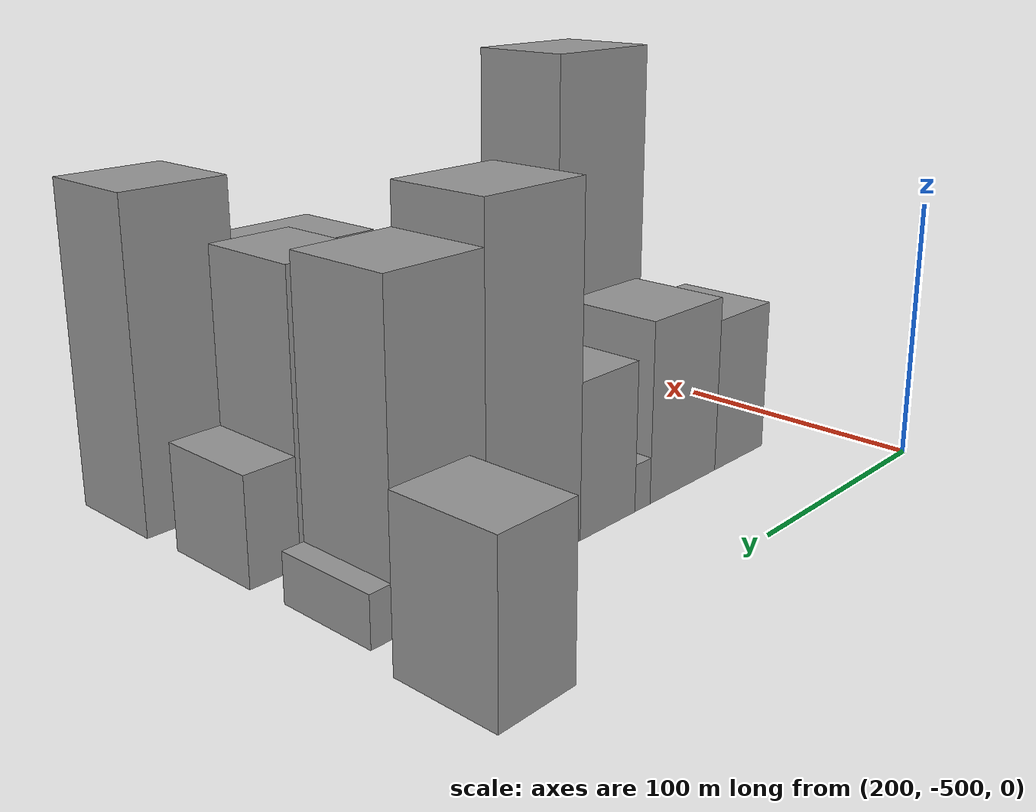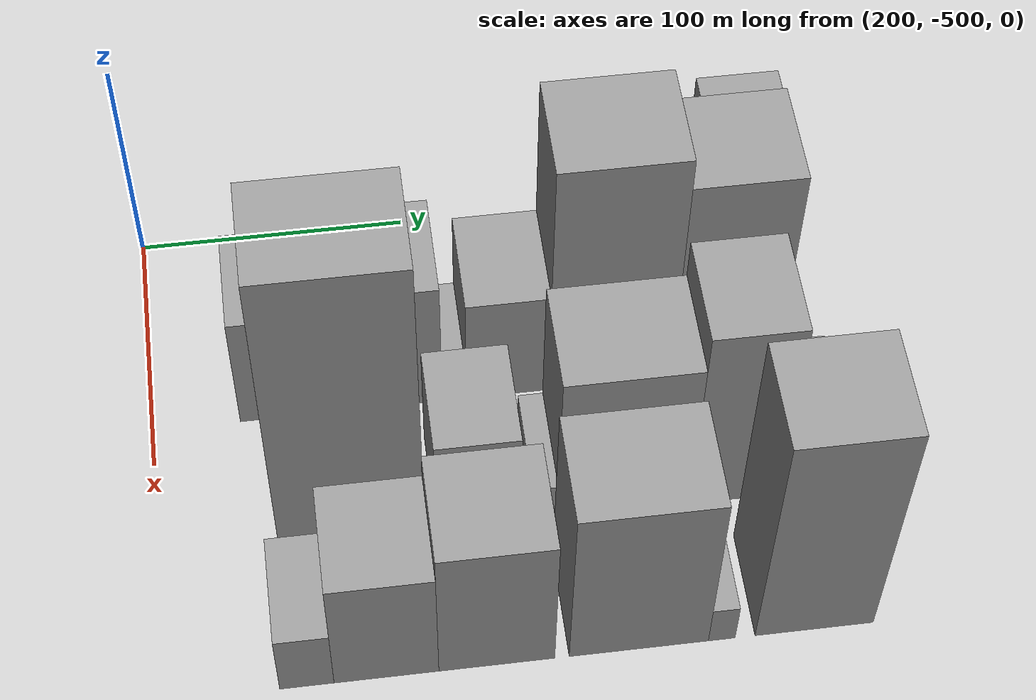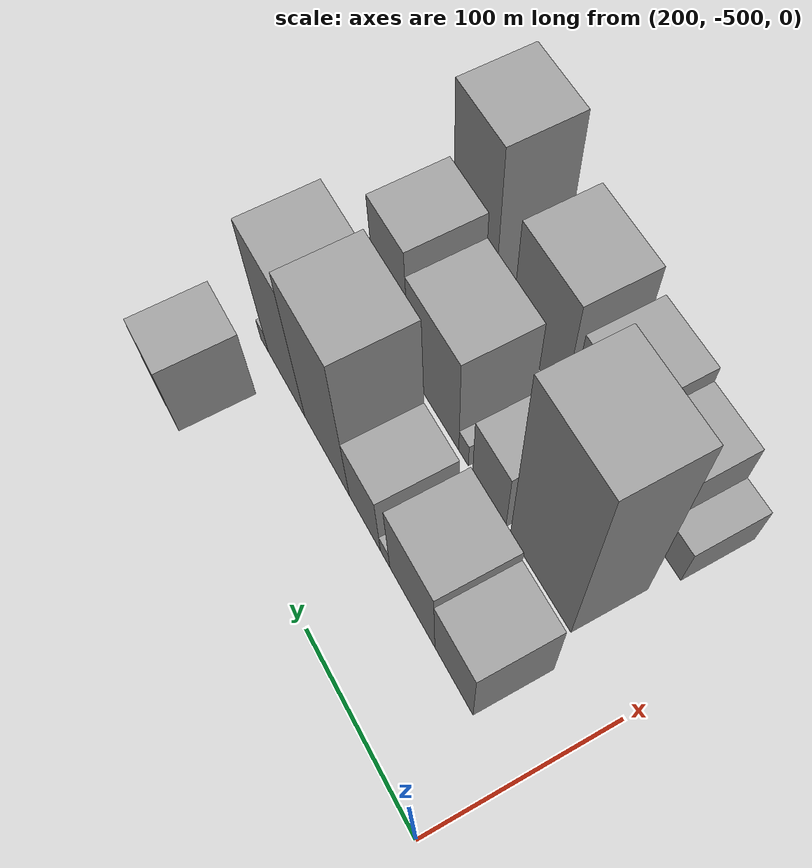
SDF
<sdf version="1.6">
 <world name="default">
  <model name="building_123">
   <static>1</static>
   <pose>210.0000 -269.6053 0 0.000000 0.000000 0.000000</pose>
   <link name="link">
    <pose>0 0 28.50 0 0 0</pose>
    <collision name="collision"><geometry><box><size>40.0000 31.2760 57.0000</size></box></geometry></collision>
    <visual name="visual">
     <cast_shadows>0</cast_shadows>
     <geometry><box><size>40.0000 31.2760 57.0000</size></box></geometry>
     <material>
      <script>
       <uri>model://grey_wall/materials/scripts</uri>
       <uri>model://grey_wall/materials/textures</uri>
       <name>vrc/grey_wall</name>
      </script>
     </material>
    </visual>
   </link>
  </model>
  <model name="building_170">
   <static>1</static>
   <pose>265.0000 -451.0781 0 0.000000 0.000000 0.000000</pose>
   <link name="link">
    <pose>0 0 30.00 0 0 0</pose>
    <collision name="collision"><geometry><box><size>40.0000 33.3073 60.0000</size></box></geometry></collision>
    <visual name="visual">
     <cast_shadows>0</cast_shadows>
     <geometry><box><size>40.0000 33.3073 60.0000</size></box></geometry>
     <material>
      <script>
       <uri>model://grey_wall/materials/scripts</uri>
       <uri>model://grey_wall/materials/textures</uri>
       <name>vrc/grey_wall</name>
      </script>
     </material>
    </visual>
   </link>
  </model>
  <model name="building_171">
   <static>1</static>
   <pose>265.0000 -413.7331 0 0.000000 0.000000 0.000000</pose>
   <link name="link">
    <pose>0 0 34.50 0 0 0</pose>
    <collision name="collision"><geometry><box><size>40.0000 41.3826 69.0000</size></box></geometry></collision>
    <visual name="visual">
     <cast_shadows>0</cast_shadows>
     <geometry><box><size>40.0000 41.3826 69.0000</size></box></geometry>
     <material>
      <script>
       <uri>model://grey_wall/materials/scripts</uri>
       <uri>model://grey_wall/materials/textures</uri>
       <name>vrc/grey_wall</name>
      </script>
     </material>
    </visual>
   </link>
  </model>
  <model name="building_172">
   <static>1</static>
   <pose>265.0000 -388.5617 0 0.000000 0.000000 0.000000</pose>
   <link name="link">
    <pose>0 0 9.00 0 0 0</pose>
    <collision name="collision"><geometry><box><size>40.0000 8.9601 18.0000</size></box></geometry></collision>
    <visual name="visual">
     <cast_shadows>0</cast_shadows>
     <geometry><box><size>40.0000 8.9601 18.0000</size></box></geometry>
     <material>
      <script>
       <uri>model://grey_wall/materials/scripts</uri>
       <uri>model://grey_wall/materials/textures</uri>
       <name>vrc/grey_wall</name>
      </script>
     </material>
    </visual>
   </link>
  </model>
  <model name="building_173">
   <static>1</static>
   <pose>265.0000 -368.8034 0 0.000000 0.000000 0.000000</pose>
   <link name="link">
    <pose>0 0 28.50 0 0 0</pose>
    <collision name="collision"><geometry><box><size>40.0000 30.5565 57.0000</size></box></geometry></collision>
    <visual name="visual">
     <cast_shadows>0</cast_shadows>
     <geometry><box><size>40.0000 30.5565 57.0000</size></box></geometry>
     <material>
      <script>
       <uri>model://grey_wall/materials/scripts</uri>
       <uri>model://grey_wall/materials/textures</uri>
       <name>vrc/grey_wall</name>
      </script>
     </material>
    </visual>
   </link>
  </model>
  <model name="building_174">
   <static>1</static>
   <pose>265.0000 -330.4891 0 0.000000 0.000000 0.000000</pose>
   <link name="link">
    <pose>0 0 63.00 0 0 0</pose>
    <collision name="collision"><geometry><box><size>40.0000 46.0722 126.0000</size></box></geometry></collision>
    <visual name="visual">
     <cast_shadows>0</cast_shadows>
     <geometry><box><size>40.0000 46.0722 126.0000</size></box></geometry>
     <material>
      <script>
       <uri>model://grey_wall/materials/scripts</uri>
       <uri>model://grey_wall/materials/textures</uri>
       <name>vrc/grey_wall</name>
      </script>
     </material>
    </visual>
   </link>
  </model>
  <model name="building_175">
   <static>1</static>
   <pose>265.0000 -287.5392 0 0.000000 0.000000 0.000000</pose>
   <link name="link">
    <pose>0 0 55.50 0 0 0</pose>
    <collision name="collision"><geometry><box><size>40.0000 39.8275 111.0000</size></box></geometry></collision>
    <visual name="visual">
     <cast_shadows>0</cast_shadows>
     <geometry><box><size>40.0000 39.8275 111.0000</size></box></geometry>
     <material>
      <script>
       <uri>model://grey_wall/materials/scripts</uri>
       <uri>model://grey_wall/materials/textures</uri>
       <name>vrc/grey_wall</name>
      </script>
     </material>
    </visual>
   </link>
  </model>
  <model name="building_176">
   <static>1</static>
   <pose>265.0000 -263.3163 0 0.000000 0.000000 0.000000</pose>
   <link name="link">
    <pose>0 0 9.00 0 0 0</pose>
    <collision name="collision"><geometry><box><size>40.0000 8.6185 18.0000</size></box></geometry></collision>
    <visual name="visual">
     <cast_shadows>0</cast_shadows>
     <geometry><box><size>40.0000 8.6185 18.0000</size></box></geometry>
     <material>
      <script>
       <uri>model://grey_wall/materials/scripts</uri>
       <uri>model://grey_wall/materials/textures</uri>
       <name>vrc/grey_wall</name>
      </script>
     </material>
    </visual>
   </link>
  </model>
  <model name="building_221">
   <static>1</static>
   <pose>320.0000 -431.4574 0 0.000000 0.000000 0.000000</pose>
   <link name="link">
    <pose>0 0 78.00 0 0 0</pose>
    <collision name="collision"><geometry><box><size>40.0000 52.0548 156.0000</size></box></geometry></collision>
    <visual name="visual">
     <cast_shadows>0</cast_shadows>
     <geometry><box><size>40.0000 52.0548 156.0000</size></box></geometry>
     <material>
      <script>
       <uri>model://grey_wall/materials/scripts</uri>
       <uri>model://grey_wall/materials/textures</uri>
       <name>vrc/grey_wall</name>
      </script>
     </material>
    </visual>
   </link>
  </model>
  <model name="building_222">
   <static>1</static>
   <pose>320.0000 -386.2650 0 0.000000 0.000000 0.000000</pose>
   <link name="link">
    <pose>0 0 27.00 0 0 0</pose>
    <collision name="collision"><geometry><box><size>40.0000 30.3300 54.0000</size></box></geometry></collision>
    <visual name="visual">
     <cast_shadows>0</cast_shadows>
     <geometry><box><size>40.0000 30.3300 54.0000</size></box></geometry>
     <material>
      <script>
       <uri>model://grey_wall/materials/scripts</uri>
       <uri>model://grey_wall/materials/textures</uri>
       <name>vrc/grey_wall</name>
      </script>
     </material>
    </visual>
   </link>
  </model>
  <model name="building_223">
   <static>1</static>
   <pose>320.0000 -362.6008 0 0.000000 0.000000 0.000000</pose>
   <link name="link">
    <pose>0 0 10.50 0 0 0</pose>
    <collision name="collision"><geometry><box><size>40.0000 8.9984 21.0000</size></box></geometry></collision>
    <visual name="visual">
     <cast_shadows>0</cast_shadows>
     <geometry><box><size>40.0000 8.9984 21.0000</size></box></geometry>
     <material>
      <script>
       <uri>model://grey_wall/materials/scripts</uri>
       <uri>model://grey_wall/materials/textures</uri>
       <name>vrc/grey_wall</name>
      </script>
     </material>
    </visual>
   </link>
  </model>
  <model name="building_224">
   <static>1</static>
   <pose>320.0000 -334.1462 0 0.000000 0.000000 0.000000</pose>
   <link name="link">
    <pose>0 0 42.00 0 0 0</pose>
    <collision name="collision"><geometry><box><size>40.0000 47.9107 84.0000</size></box></geometry></collision>
    <visual name="visual">
     <cast_shadows>0</cast_shadows>
     <geometry><box><size>40.0000 47.9107 84.0000</size></box></geometry>
     <material>
      <script>
       <uri>model://grey_wall/materials/scripts</uri>
       <uri>model://grey_wall/materials/textures</uri>
       <name>vrc/grey_wall</name>
      </script>
     </material>
    </visual>
   </link>
  </model>
  <model name="building_225">
   <static>1</static>
   <pose>320.0000 -293.7678 0 0.000000 0.000000 0.000000</pose>
   <link name="link">
    <pose>0 0 51.00 0 0 0</pose>
    <collision name="collision"><geometry><box><size>40.0000 32.8460 102.0000</size></box></geometry></collision>
    <visual name="visual">
     <cast_shadows>0</cast_shadows>
     <geometry><box><size>40.0000 32.8460 102.0000</size></box></geometry>
     <material>
      <script>
       <uri>model://grey_wall/materials/scripts</uri>
       <uri>model://grey_wall/materials/textures</uri>
       <name>vrc/grey_wall</name>
      </script>
     </material>
    </visual>
   </link>
  </model>
  <model name="building_226">
   <static>1</static>
   <pose>320.0000 -267.2460 0 0.000000 0.000000 0.000000</pose>
   <link name="link">
    <pose>0 0 19.50 0 0 0</pose>
    <collision name="collision"><geometry><box><size>40.0000 20.1976 39.0000</size></box></geometry></collision>
    <visual name="visual">
     <cast_shadows>0</cast_shadows>
     <geometry><box><size>40.0000 20.1976 39.0000</size></box></geometry>
     <material>
      <script>
       <uri>model://grey_wall/materials/scripts</uri>
       <uri>model://grey_wall/materials/textures</uri>
       <name>vrc/grey_wall</name>
      </script>
     </material>
    </visual>
   </link>
  </model>
  <model name="building_276">
   <static>1</static>
   <pose>375.0000 -451.9052 0 0.000000 0.000000 0.000000</pose>
   <link name="link">
    <pose>0 0 16.50 0 0 0</pose>
    <collision name="collision"><geometry><box><size>40.0000 18.5457 33.0000</size></box></geometry></collision>
    <visual name="visual">
     <cast_shadows>0</cast_shadows>
     <geometry><box><size>40.0000 18.5457 33.0000</size></box></geometry>
     <material>
      <script>
       <uri>model://grey_wall/materials/scripts</uri>
       <uri>model://grey_wall/materials/textures</uri>
       <name>vrc/grey_wall</name>
      </script>
     </material>
    </visual>
   </link>
  </model>
  <model name="building_277">
   <static>1</static>
   <pose>375.0000 -424.6555 0 0.000000 0.000000 0.000000</pose>
   <link name="link">
    <pose>0 0 31.50 0 0 0</pose>
    <collision name="collision"><geometry><box><size>40.0000 35.9537 63.0000</size></box></geometry></collision>
    <visual name="visual">
     <cast_shadows>0</cast_shadows>
     <geometry><box><size>40.0000 35.9537 63.0000</size></box></geometry>
     <material>
      <script>
       <uri>model://grey_wall/materials/scripts</uri>
       <uri>model://grey_wall/materials/textures</uri>
       <name>vrc/grey_wall</name>
      </script>
     </material>
    </visual>
   </link>
  </model>
  <model name="building_278">
   <static>1</static>
   <pose>375.0000 -386.6809 0 0.000000 0.000000 0.000000</pose>
   <link name="link">
    <pose>0 0 37.50 0 0 0</pose>
    <collision name="collision"><geometry><box><size>40.0000 39.9954 75.0000</size></box></geometry></collision>
    <visual name="visual">
     <cast_shadows>0</cast_shadows>
     <geometry><box><size>40.0000 39.9954 75.0000</size></box></geometry>
     <material>
      <script>
       <uri>model://grey_wall/materials/scripts</uri>
       <uri>model://grey_wall/materials/textures</uri>
       <name>vrc/grey_wall</name>
      </script>
     </material>
    </visual>
   </link>
  </model>
  <model name="building_279">
   <static>1</static>
   <pose>375.0000 -337.4347 0 0.000000 0.000000 0.000000</pose>
   <link name="link">
    <pose>0 0 45.00 0 0 0</pose>
    <collision name="collision"><geometry><box><size>40.0000 48.4970 90.0000</size></box></geometry></collision>
    <visual name="visual">
     <cast_shadows>0</cast_shadows>
     <geometry><box><size>40.0000 48.4970 90.0000</size></box></geometry>
     <material>
      <script>
       <uri>model://grey_wall/materials/scripts</uri>
       <uri>model://grey_wall/materials/textures</uri>
       <name>vrc/grey_wall</name>
      </script>
     </material>
    </visual>
   </link>
  </model>
  <model name="building_280">
   <static>1</static>
   <pose>375.0000 -308.5053 0 0.000000 0.000000 0.000000</pose>
   <link name="link">
    <pose>0 0 10.50 0 0 0</pose>
    <collision name="collision"><geometry><box><size>40.0000 9.3619 21.0000</size></box></geometry></collision>
    <visual name="visual">
     <cast_shadows>0</cast_shadows>
     <geometry><box><size>40.0000 9.3619 21.0000</size></box></geometry>
     <material>
      <script>
       <uri>model://grey_wall/materials/scripts</uri>
       <uri>model://grey_wall/materials/textures</uri>
       <name>vrc/grey_wall</name>
      </script>
     </material>
    </visual>
   </link>
  </model>
  <model name="building_281">
   <static>1</static>
   <pose>375.0000 -276.0103 0 0.000000 0.000000 0.000000</pose>
   <link name="link">
    <pose>0 0 60.00 0 0 0</pose>
    <collision name="collision"><geometry><box><size>40.0000 41.6281 120.0000</size></box></geometry></collision>
    <visual name="visual">
     <cast_shadows>0</cast_shadows>
     <geometry><box><size>40.0000 41.6281 120.0000</size></box></geometry>
     <material>
      <script>
       <uri>model://grey_wall/materials/scripts</uri>
       <uri>model://grey_wall/materials/textures</uri>
       <name>vrc/grey_wall</name>
      </script>
     </material>
    </visual>
   </link>
  </model>
 </world>
</sdf>
